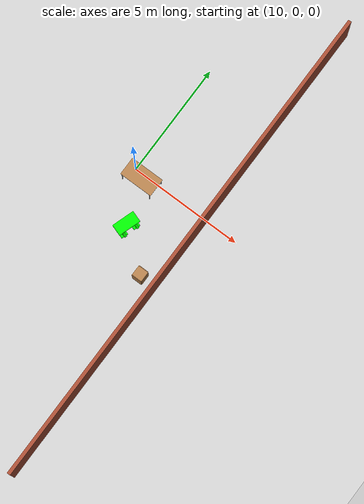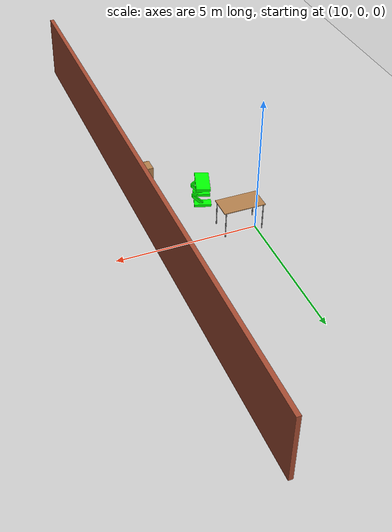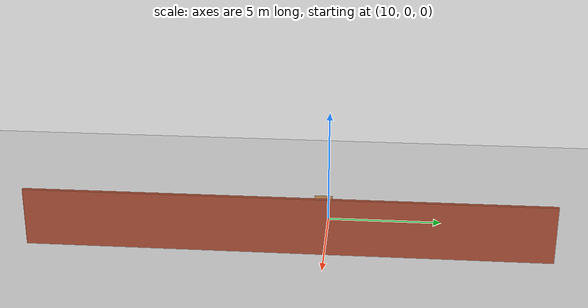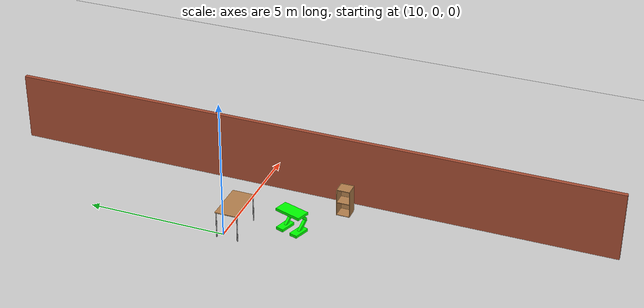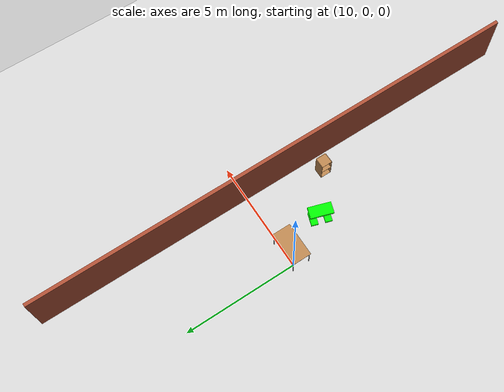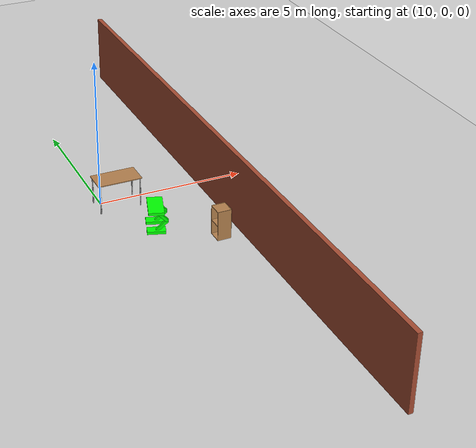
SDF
<sdf version="1.7">
 <world name="default">
  <model name="ground_plane">
   <static>1</static>
   <link name="link">
    <collision name="collision">
     <geometry><plane><normal>0 0 1</normal><size>100 100</size></plane></geometry>
     <surface>
      <contact><collide_bitmask>65535</collide_bitmask></contact>
      <friction><ode><mu>100</mu><mu2>50</mu2></ode></friction>
     </surface>
    </collision>
    <visual name="visual">
     <cast_shadows>0</cast_shadows>
     <geometry><plane><normal>0 0 1</normal><size>100 100</size></plane></geometry>
     <material>
      <script><uri>file://media/materials/scripts/gazebo.material</uri><name>Gazebo/Grey</name></script>
     </material>
    </visual>
   </link>
  </model>
  <model name="newworld">
   <link name="Wall_39">
    <pose>13.3204 -2.52468 0 0 -0 1.5708</pose>
    <visual name="Wall_39_Visual">
     <pose>0 0 1.25 0 -0 0</pose>
     <geometry><box><size>22.25 0.15 2.5</size></box></geometry>
     <material>
      <script><uri>file://media/materials/scripts/gazebo.material</uri><name>Gazebo/Bricks</name></script>
      <ambient>1 1 1 1</ambient>
      <shader type="pixel"/>
     </material>
     <meta><layer>0</layer></meta>
    </visual>
    <collision name="Wall_39_Collision">
     <pose>0 0 1.25 0 -0 0</pose>
     <geometry><box><size>22.25 0.15 2.5</size></box></geometry>
     <surface>
      <friction>
       <ode><mu>1</mu><mu2>1</mu2><fdir1>0 0 0</fdir1><slip1>0</slip1><slip2>0</slip2></ode>
       <torsional>
        <coefficient>1</coefficient>
        <patch_radius>0</patch_radius>
        <surface_radius>0</surface_radius>
        <use_patch_radius>1</use_patch_radius>
        <ode><slip>0</slip></ode>
       </torsional>
      </friction>
      <bounce><restitution_coefficient>0</restitution_coefficient><threshold>1e+06</threshold></bounce>
      <contact>
       <collide_without_contact>0</collide_without_contact>
       <collide_without_contact_bitmask>1</collide_without_contact_bitmask>
       <collide_bitmask>1</collide_bitmask>
       <ode>
        <soft_cfm>0</soft_cfm>
        <soft_erp>0.2</soft_erp>
        <kp>1e+13</kp>
        <kd>1</kd>
        <max_vel>0.01</max_vel>
        <min_depth>0</min_depth>
       </ode>
       <bullet>
        <split_impulse>1</split_impulse>
        <split_impulse_penetration_threshold>-0.01</split_impulse_penetration_threshold>
        <soft_cfm>0</soft_cfm>
        <soft_erp>0.2</soft_erp>
        <kp>1e+13</kp>
        <kd>1</kd>
       </bullet>
      </contact>
     </surface>
    </collision>
   </link>
   <static>1</static>
   <pose>0.193711 0.903984 0 0 -0 0</pose>
  </model>
  <model name="table_1">
   <static>1</static>
   <link name="link">
    <collision name="surface">
     <pose>0 0 1 0 -0 0</pose>
     <geometry><box><size>1.5 0.8 0.03</size></box></geometry>
     <surface><friction><ode><mu>0.6</mu><mu2>0.6</mu2></ode></friction></surface>
    </collision>
    <visual name="visual1">
     <pose>0 0 1 0 -0 0</pose>
     <geometry><box><size>1.5 0.8 0.03</size></box></geometry>
     <material>
      <script><uri>file://media/materials/scripts/gazebo.material</uri><name>Gazebo/Wood</name></script>
     </material>
    </visual>
    <collision name="front_left_leg">
     <pose>0.68 0.38 0.5 0 -0 0</pose>
     <geometry><cylinder><radius>0.02</radius><length>1</length></cylinder></geometry>
    </collision>
    <visual name="front_left_leg">
     <pose>0.68 0.38 0.5 0 -0 0</pose>
     <geometry><cylinder><radius>0.02</radius><length>1</length></cylinder></geometry>
     <material>
      <script><uri>file://media/materials/scripts/gazebo.material</uri><name>Gazebo/Grey</name></script>
     </material>
    </visual>
    <collision name="front_right_leg">
     <pose>0.68 -0.38 0.5 0 -0 0</pose>
     <geometry><cylinder><radius>0.02</radius><length>1</length></cylinder></geometry>
    </collision>
    <visual name="front_right_leg">
     <pose>0.68 -0.38 0.5 0 -0 0</pose>
     <geometry><cylinder><radius>0.02</radius><length>1</length></cylinder></geometry>
     <material>
      <script><uri>file://media/materials/scripts/gazebo.material</uri><name>Gazebo/Grey</name></script>
     </material>
    </visual>
    <collision name="back_right_leg">
     <pose>-0.68 -0.38 0.5 0 -0 0</pose>
     <geometry><cylinder><radius>0.02</radius><length>1</length></cylinder></geometry>
    </collision>
    <visual name="back_right_leg">
     <pose>-0.68 -0.38 0.5 0 -0 0</pose>
     <geometry><cylinder><radius>0.02</radius><length>1</length></cylinder></geometry>
     <material>
      <script><uri>file://media/materials/scripts/gazebo.material</uri><name>Gazebo/Grey</name></script>
     </material>
    </visual>
    <collision name="back_left_leg">
     <pose>-0.68 0.38 0.5 0 -0 0</pose>
     <geometry><cylinder><radius>0.02</radius><length>1</length></cylinder></geometry>
    </collision>
    <visual name="back_left_leg">
     <pose>-0.68 0.38 0.5 0 -0 0</pose>
     <geometry><cylinder><radius>0.02</radius><length>1</length></cylinder></geometry>
     <material>
      <script><uri>file://media/materials/scripts/gazebo.material</uri><name>Gazebo/Grey</name></script>
     </material>
    </visual>
   </link>
   <pose>10.4903 -0.235506 0 0 -0 0</pose>
  </model>
  <model name="cabinet">
   <static>1</static>
   <link name="cabinet_bottom_plate">
    <inertial>
     <pose>0 0 -1 0 -0 0</pose>
     <inertia><ixx>2.05</ixx><ixy>0</ixy><ixz>0</ixz><iyy>2.05</iyy><iyz>0</iyz><izz>2.05</izz></inertia>
     <mass>25</mass>
    </inertial>
    <collision name="cabinet_bottom_plate_geom">
     <pose>0 0 0.01 0 -0 0</pose>
     <geometry><box><size>0.45 0.45 0.02</size></box></geometry>
    </collision>
    <visual name="cabinet_bottom_plate_geom_visual">
     <pose>0 0 0.01 0 -0 0</pose>
     <geometry><box><size>0.45 0.45 0.02</size></box></geometry>
     <material>
      <script><uri>file://media/materials/scripts/gazebo.material</uri><name>Gazebo/Wood</name></script>
     </material>
    </visual>
    <collision name="cabinet_bottom_plate_geom_cabinet_back_plate">
     <pose>0.235 0 0.51 0 -0 0</pose>
     <geometry><box><size>0.02 0.45 1.02</size></box></geometry>
    </collision>
    <visual name="cabinet_bottom_plate_geom_cabinet_back_plate_visual">
     <pose>0.235 0 0.51 0 -0 0</pose>
     <geometry><box><size>0.02 0.45 1.02</size></box></geometry>
     <material>
      <script><uri>file://media/materials/scripts/gazebo.material</uri><name>Gazebo/Wood</name></script>
     </material>
    </visual>
    <collision name="cabinet_bottom_plate_geom_cabinet_left_plate">
     <pose>0 0.235 0.51 0 -0 0</pose>
     <geometry><box><size>0.45 0.02 1.02</size></box></geometry>
    </collision>
    <visual name="cabinet_bottom_plate_geom_cabinet_left_plate_visual">
     <pose>0 0.235 0.51 0 -0 0</pose>
     <geometry><box><size>0.45 0.02 1.02</size></box></geometry>
     <material>
      <script><uri>file://media/materials/scripts/gazebo.material</uri><name>Gazebo/Wood</name></script>
     </material>
    </visual>
    <collision name="cabinet_bottom_plate_geom_cabinet_middle_plate">
     <pose>0 0 0.51 0 -0 0</pose>
     <geometry><box><size>0.45 0.45 0.02</size></box></geometry>
    </collision>
    <visual name="cabinet_bottom_plate_geom_cabinet_middle_plate_visual">
     <pose>0 0 0.51 0 -0 0</pose>
     <geometry><box><size>0.45 0.45 0.02</size></box></geometry>
     <material>
      <script><uri>file://media/materials/scripts/gazebo.material</uri><name>Gazebo/Wood</name></script>
     </material>
    </visual>
    <collision name="cabinet_bottom_plate_geom_cabinet_right_plate">
     <pose>0 -0.235 0.51 0 -0 0</pose>
     <geometry><box><size>0.45 0.02 1.02</size></box></geometry>
    </collision>
    <visual name="cabinet_bottom_plate_geom_cabinet_right_plate_visual">
     <pose>0 -0.235 0.51 0 -0 0</pose>
     <geometry><box><size>0.45 0.02 1.02</size></box></geometry>
     <material>
      <script><uri>file://media/materials/scripts/gazebo.material</uri><name>Gazebo/Wood</name></script>
     </material>
    </visual>
    <collision name="cabinet_bottom_plate_geom_cabinet_top_plate">
     <pose>0 0 1.01 0 -0 0</pose>
     <geometry><box><size>0.45 0.45 0.02</size></box></geometry>
    </collision>
    <visual name="cabinet_bottom_plate_geom_cabinet_top_plate_visual">
     <pose>0 0 1.01 0 -0 0</pose>
     <geometry><box><size>0.45 0.45 0.02</size></box></geometry>
     <material>
      <script><uri>file://media/materials/scripts/gazebo.material</uri><name>Gazebo/Wood</name></script>
     </material>
    </visual>
   </link>
   <pose>12.7659 -3.37012 0 0 -0 0</pose>
  </model>
  <model name="HumanoidRobot_0">
   <model name="HumanoidRobot">
    <link name="link_0">
     <pose>-0.012657 0.075 0.964637 0 -0 0</pose>
     <inertial>
      <mass>1</mass>
      <inertia>
       <ixx>0.166667</ixx>
       <ixy>0</ixy>
       <ixz>0</ixz>
       <iyy>0.166667</iyy>
       <iyz>0</iyz>
       <izz>0.166667</izz>
      </inertia>
     </inertial>
     <visual name="visual">
      <geometry><box><size>0.5 1 0.1</size></box></geometry>
      <material>
       <lighting>1</lighting>
       <script><uri>file://media/materials/scripts/gazebo.material</uri><name>Gazebo/Grey</name></script>
       <shader type="pixel"><normal_map>__default__</normal_map></shader>
       <ambient>0 1 0 1</ambient>
       <diffuse>0.1 0.1 0.1 1</diffuse>
       <specular>0 0 0 1</specular>
       <emissive>0 0 0 1</emissive>
      </material>
     </visual>
     <collision name="collision">
      <geometry><box><size>0.5 1 0.1</size></box></geometry>
      <surface>
       <friction>
        <ode><mu>1</mu><mu2>1</mu2><fdir1>0 0 0</fdir1><slip1>0</slip1><slip2>0</slip2></ode>
        <torsional>
         <coefficient>1</coefficient>
         <patch_radius>0</patch_radius>
         <surface_radius>0</surface_radius>
         <use_patch_radius>1</use_patch_radius>
         <ode><slip>0</slip></ode>
        </torsional>
       </friction>
       <bounce><restitution_coefficient>0</restitution_coefficient><threshold>1e+06</threshold></bounce>
       <contact>
        <collide_without_contact>0</collide_without_contact>
        <collide_without_contact_bitmask>1</collide_without_contact_bitmask>
        <collide_bitmask>1</collide_bitmask>
        <ode>
         <soft_cfm>0</soft_cfm>
         <soft_erp>0.2</soft_erp>
         <kp>1e+13</kp>
         <kd>1</kd>
         <max_vel>0.01</max_vel>
         <min_depth>0</min_depth>
        </ode>
        <bullet>
         <split_impulse>1</split_impulse>
         <split_impulse_penetration_threshold>-0.01</split_impulse_penetration_threshold>
         <soft_cfm>0</soft_cfm>
         <soft_erp>0.2</soft_erp>
         <kp>1e+13</kp>
         <kd>1</kd>
        </bullet>
       </contact>
      </surface>
     </collision>
    </link>
    <link name="link_2">
     <pose>-0.012657 0.375 0.964637 0 -0.785 0</pose>
     <inertial>
      <mass>1</mass>
      <inertia>
       <ixx>0.166667</ixx>
       <ixy>0</ixy>
       <ixz>0</ixz>
       <iyy>0.166667</iyy>
       <iyz>0</iyz>
       <izz>0.166667</izz>
      </inertia>
     </inertial>
     <visual name="visual">
      <pose>0 0 -0.25 0 -0 0</pose>
      <geometry><box><size>0.1 0.1 0.5</size></box></geometry>
      <material>
       <lighting>1</lighting>
       <script><uri>file://media/materials/scripts/gazebo.material</uri><name>Gazebo/Grey</name></script>
       <shader type="pixel"><normal_map>__default__</normal_map></shader>
       <ambient>0 1 0 1</ambient>
       <diffuse>0.1 0.1 0.1 1</diffuse>
       <specular>0 0 0 1</specular>
       <emissive>0 0 0 1</emissive>
      </material>
     </visual>
     <collision name="collision">
      <pose>0 0 -0.25 0 -0 0</pose>
      <geometry><box><size>0.1 0.1 0.5</size></box></geometry>
      <surface>
       <friction>
        <ode><mu>1</mu><mu2>1</mu2><fdir1>0 0 0</fdir1><slip1>0</slip1><slip2>0</slip2></ode>
        <torsional>
         <coefficient>1</coefficient>
         <patch_radius>0</patch_radius>
         <surface_radius>0</surface_radius>
         <use_patch_radius>1</use_patch_radius>
         <ode><slip>0</slip></ode>
        </torsional>
       </friction>
       <bounce><restitution_coefficient>0</restitution_coefficient><threshold>1e+06</threshold></bounce>
       <contact>
        <collide_without_contact>0</collide_without_contact>
        <collide_without_contact_bitmask>1</collide_without_contact_bitmask>
        <collide_bitmask>1</collide_bitmask>
        <ode>
         <soft_cfm>0</soft_cfm>
         <soft_erp>0.2</soft_erp>
         <kp>1e+13</kp>
         <kd>1</kd>
         <max_vel>0.01</max_vel>
         <min_depth>0</min_depth>
        </ode>
        <bullet>
         <split_impulse>1</split_impulse>
         <split_impulse_penetration_threshold>-0.01</split_impulse_penetration_threshold>
         <soft_cfm>0</soft_cfm>
         <soft_erp>0.2</soft_erp>
         <kp>1e+13</kp>
         <kd>1</kd>
        </bullet>
       </contact>
      </surface>
     </collision>
    </link>
    <link name="link_2_clone">
     <pose>0.340755 0.375 0.610943 0 0.7857 0</pose>
     <inertial>
      <mass>1</mass>
      <inertia>
       <ixx>0.166667</ixx>
       <ixy>0</ixy>
       <ixz>0</ixz>
       <iyy>0.166667</iyy>
       <iyz>0</iyz>
       <izz>0.166667</izz>
      </inertia>
     </inertial>
     <visual name="visual">
      <pose>0 0 -0.25 0 -0 0</pose>
      <geometry><box><size>0.1 0.1 0.5</size></box></geometry>
      <material>
       <lighting>1</lighting>
       <script><uri>file://media/materials/scripts/gazebo.material</uri><name>Gazebo/Grey</name></script>
       <shader type="pixel"><normal_map>__default__</normal_map></shader>
       <ambient>0 1 0 1</ambient>
       <diffuse>0.1 0.1 0.1 1</diffuse>
       <specular>0 0 0 1</specular>
       <emissive>0 0 0 1</emissive>
      </material>
     </visual>
     <collision name="collision">
      <pose>0 0 -0.25 0 -0 0</pose>
      <geometry><box><size>0.1 0.1 0.5</size></box></geometry>
      <surface>
       <friction>
        <ode><mu>1</mu><mu2>1</mu2><fdir1>0 0 0</fdir1><slip1>0</slip1><slip2>0</slip2></ode>
        <torsional>
         <coefficient>1</coefficient>
         <patch_radius>0</patch_radius>
         <surface_radius>0</surface_radius>
         <use_patch_radius>1</use_patch_radius>
         <ode><slip>0</slip></ode>
        </torsional>
       </friction>
       <bounce><restitution_coefficient>0</restitution_coefficient><threshold>1e+06</threshold></bounce>
       <contact>
        <collide_without_contact>0</collide_without_contact>
        <collide_without_contact_bitmask>1</collide_without_contact_bitmask>
        <collide_bitmask>1</collide_bitmask>
        <ode>
         <soft_cfm>0</soft_cfm>
         <soft_erp>0.2</soft_erp>
         <kp>1e+13</kp>
         <kd>1</kd>
         <max_vel>0.01</max_vel>
         <min_depth>0</min_depth>
        </ode>
        <bullet>
         <split_impulse>1</split_impulse>
         <split_impulse_penetration_threshold>-0.01</split_impulse_penetration_threshold>
         <soft_cfm>0</soft_cfm>
         <soft_erp>0.2</soft_erp>
         <kp>1e+13</kp>
         <kd>1</kd>
        </bullet>
       </contact>
      </surface>
     </collision>
    </link>
    <link name="link_2_clone_clone">
     <pose>-0.012657 -0.225 0.964637 0 -0.7857 0</pose>
     <inertial>
      <mass>1</mass>
      <inertia>
       <ixx>0.166667</ixx>
       <ixy>0</ixy>
       <ixz>0</ixz>
       <iyy>0.166667</iyy>
       <iyz>0</iyz>
       <izz>0.166667</izz>
      </inertia>
     </inertial>
     <visual name="visual">
      <pose>0 0 -0.25 0 -0 0</pose>
      <geometry><box><size>0.1 0.1 0.5</size></box></geometry>
      <material>
       <lighting>1</lighting>
       <script><uri>file://media/materials/scripts/gazebo.material</uri><name>Gazebo/Grey</name></script>
       <shader type="pixel"><normal_map>__default__</normal_map></shader>
       <ambient>0 1 0 1</ambient>
       <diffuse>0.1 0.1 0.1 1</diffuse>
       <specular>0 0 0 1</specular>
       <emissive>0 0 0 1</emissive>
      </material>
     </visual>
     <collision name="collision">
      <pose>0 0 -0.25 0 -0 0</pose>
      <geometry><box><size>0.1 0.1 0.5</size></box></geometry>
      <surface>
       <friction>
        <ode><mu>1</mu><mu2>1</mu2><fdir1>0 0 0</fdir1><slip1>0</slip1><slip2>0</slip2></ode>
        <torsional>
         <coefficient>1</coefficient>
         <patch_radius>0</patch_radius>
         <surface_radius>0</surface_radius>
         <use_patch_radius>1</use_patch_radius>
         <ode><slip>0</slip></ode>
        </torsional>
       </friction>
       <bounce><restitution_coefficient>0</restitution_coefficient><threshold>1e+06</threshold></bounce>
       <contact>
        <collide_without_contact>0</collide_without_contact>
        <collide_without_contact_bitmask>1</collide_without_contact_bitmask>
        <collide_bitmask>1</collide_bitmask>
        <ode>
         <soft_cfm>0</soft_cfm>
         <soft_erp>0.2</soft_erp>
         <kp>1e+13</kp>
         <kd>1</kd>
         <max_vel>0.01</max_vel>
         <min_depth>0</min_depth>
        </ode>
        <bullet>
         <split_impulse>1</split_impulse>
         <split_impulse_penetration_threshold>-0.01</split_impulse_penetration_threshold>
         <soft_cfm>0</soft_cfm>
         <soft_erp>0.2</soft_erp>
         <kp>1e+13</kp>
         <kd>1</kd>
        </bullet>
       </contact>
      </surface>
     </collision>
    </link>
    <link name="link_2_clone_clone_clone">
     <pose>0.341003 -0.225 0.611191 0 0.785 0</pose>
     <inertial>
      <mass>1</mass>
      <inertia>
       <ixx>0.166667</ixx>
       <ixy>0</ixy>
       <ixz>0</ixz>
       <iyy>0.166667</iyy>
       <iyz>0</iyz>
       <izz>0.166667</izz>
      </inertia>
     </inertial>
     <visual name="visual">
      <pose>0 0 -0.25 0 -0 0</pose>
      <geometry><box><size>0.1 0.1 0.5</size></box></geometry>
      <material>
       <lighting>1</lighting>
       <script><uri>file://media/materials/scripts/gazebo.material</uri><name>Gazebo/Grey</name></script>
       <shader type="pixel"><normal_map>__default__</normal_map></shader>
       <ambient>0 1 0 1</ambient>
       <diffuse>0.1 0.1 0.1 1</diffuse>
       <specular>0 0 0 1</specular>
       <emissive>0 0 0 1</emissive>
      </material>
     </visual>
     <collision name="collision">
      <pose>0 0 -0.25 0 -0 0</pose>
      <geometry><box><size>0.1 0.1 0.5</size></box></geometry>
      <surface>
       <friction>
        <ode><mu>1</mu><mu2>1</mu2><fdir1>0 0 0</fdir1><slip1>0</slip1><slip2>0</slip2></ode>
        <torsional>
         <coefficient>1</coefficient>
         <patch_radius>0</patch_radius>
         <surface_radius>0</surface_radius>
         <use_patch_radius>1</use_patch_radius>
         <ode><slip>0</slip></ode>
        </torsional>
       </friction>
       <bounce><restitution_coefficient>0</restitution_coefficient><threshold>1e+06</threshold></bounce>
       <contact>
        <collide_without_contact>0</collide_without_contact>
        <collide_without_contact_bitmask>1</collide_without_contact_bitmask>
        <collide_bitmask>1</collide_bitmask>
        <ode>
         <soft_cfm>0</soft_cfm>
         <soft_erp>0.2</soft_erp>
         <kp>1e+13</kp>
         <kd>1</kd>
         <max_vel>0.01</max_vel>
         <min_depth>0</min_depth>
        </ode>
        <bullet>
         <split_impulse>1</split_impulse>
         <split_impulse_penetration_threshold>-0.01</split_impulse_penetration_threshold>
         <soft_cfm>0</soft_cfm>
         <soft_erp>0.2</soft_erp>
         <kp>1e+13</kp>
         <kd>1</kd>
        </bullet>
       </contact>
      </surface>
     </collision>
    </link>
    <link name="link_3">
     <pose>-0.01241 -0.225 0.257496 0 -0 0</pose>
     <inertial>
      <mass>1</mass>
      <inertia>
       <ixx>0.166667</ixx>
       <ixy>0</ixy>
       <ixz>0</ixz>
       <iyy>0.166667</iyy>
       <iyz>0</iyz>
       <izz>0.166667</izz>
      </inertia>
     </inertial>
     <visual name="visual">
      <geometry><box><size>0.6 0.3 0.1</size></box></geometry>
      <material>
       <lighting>1</lighting>
       <script><uri>file://media/materials/scripts/gazebo.material</uri><name>Gazebo/Grey</name></script>
       <shader type="pixel"><normal_map>__default__</normal_map></shader>
       <ambient>0 1 0 1</ambient>
       <diffuse>0.1 0.1 0.1 1</diffuse>
       <specular>0 0 0 1</specular>
       <emissive>0 0 0 1</emissive>
      </material>
     </visual>
     <collision name="collision">
      <geometry><box><size>0.6 0.3 0.1</size></box></geometry>
      <surface>
       <friction>
        <ode><mu>1</mu><mu2>1</mu2><fdir1>0 0 0</fdir1><slip1>0</slip1><slip2>0</slip2></ode>
        <torsional>
         <coefficient>1</coefficient>
         <patch_radius>0</patch_radius>
         <surface_radius>0</surface_radius>
         <use_patch_radius>1</use_patch_radius>
         <ode><slip>0</slip></ode>
        </torsional>
       </friction>
       <bounce><restitution_coefficient>0</restitution_coefficient><threshold>1e+06</threshold></bounce>
       <contact>
        <collide_without_contact>0</collide_without_contact>
        <collide_without_contact_bitmask>1</collide_without_contact_bitmask>
        <collide_bitmask>1</collide_bitmask>
        <ode>
         <soft_cfm>0</soft_cfm>
         <soft_erp>0.2</soft_erp>
         <kp>1e+13</kp>
         <kd>1</kd>
         <max_vel>0.01</max_vel>
         <min_depth>0</min_depth>
        </ode>
        <bullet>
         <split_impulse>1</split_impulse>
         <split_impulse_penetration_threshold>-0.01</split_impulse_penetration_threshold>
         <soft_cfm>0</soft_cfm>
         <soft_erp>0.2</soft_erp>
         <kp>1e+13</kp>
         <kd>1</kd>
        </bullet>
       </contact>
      </surface>
     </collision>
    </link>
    <link name="link_3_clone">
     <pose>-0.012905 0.375 0.257496 0 -0 0</pose>
     <inertial>
      <mass>1</mass>
      <inertia>
       <ixx>0.166667</ixx>
       <ixy>0</ixy>
       <ixz>0</ixz>
       <iyy>0.166667</iyy>
       <iyz>0</iyz>
       <izz>0.166667</izz>
      </inertia>
     </inertial>
     <visual name="visual">
      <geometry><box><size>0.6 0.3 0.1</size></box></geometry>
      <material>
       <lighting>1</lighting>
       <script><uri>file://media/materials/scripts/gazebo.material</uri><name>Gazebo/Grey</name></script>
       <shader type="pixel"><normal_map>__default__</normal_map></shader>
       <ambient>0 1 0 1</ambient>
       <diffuse>0.1 0.1 0.1 1</diffuse>
       <specular>0 0 0 1</specular>
       <emissive>0 0 0 1</emissive>
      </material>
     </visual>
     <collision name="collision">
      <geometry><box><size>0.6 0.3 0.1</size></box></geometry>
      <surface>
       <friction>
        <ode><mu>1</mu><mu2>1</mu2><fdir1>0 0 0</fdir1><slip1>0</slip1><slip2>0</slip2></ode>
        <torsional>
         <coefficient>1</coefficient>
         <patch_radius>0</patch_radius>
         <surface_radius>0</surface_radius>
         <use_patch_radius>1</use_patch_radius>
         <ode><slip>0</slip></ode>
        </torsional>
       </friction>
       <bounce><restitution_coefficient>0</restitution_coefficient><threshold>1e+06</threshold></bounce>
       <contact>
        <collide_without_contact>0</collide_without_contact>
        <collide_without_contact_bitmask>1</collide_without_contact_bitmask>
        <collide_bitmask>1</collide_bitmask>
        <ode>
         <soft_cfm>0</soft_cfm>
         <soft_erp>0.2</soft_erp>
         <kp>1e+13</kp>
         <kd>1</kd>
         <max_vel>0.01</max_vel>
         <min_depth>0</min_depth>
        </ode>
        <bullet>
         <split_impulse>1</split_impulse>
         <split_impulse_penetration_threshold>-0.01</split_impulse_penetration_threshold>
         <soft_cfm>0</soft_cfm>
         <soft_erp>0.2</soft_erp>
         <kp>1e+13</kp>
         <kd>1</kd>
        </bullet>
       </contact>
      </surface>
     </collision>
    </link>
    <joint name="link_0_JOINT_0" type="fixed">
     <parent>link_0</parent>
     <child>link_2</child>
     <axis>
      <xyz>0 1 0</xyz>
      <limit>
       <lower>-1.79769e+308</lower>
       <upper>1.79769e+308</upper>
       <effort>-1</effort>
       <velocity>-1</velocity>
      </limit>
      <dynamics>
       <spring_reference>0</spring_reference>
       <spring_stiffness>0</spring_stiffness>
       <damping>0</damping>
      </dynamics>
     </axis>
     <physics>
      <ode><limit><cfm>0</cfm><erp>0.2</erp></limit><suspension><cfm>0</cfm><erp>0.2</erp></suspension></ode>
     </physics>
    </joint>
    <joint name="link_0_JOINT_2" type="fixed">
     <parent>link_0</parent>
     <child>link_2_clone_clone</child>
     <axis>
      <xyz>0 1 0</xyz>
      <limit>
       <lower>-1.79769e+308</lower>
       <upper>1.79769e+308</upper>
       <effort>-1</effort>
       <velocity>-1</velocity>
      </limit>
      <dynamics>
       <spring_reference>0</spring_reference>
       <spring_stiffness>0</spring_stiffness>
       <damping>0</damping>
       <friction>0</friction>
      </dynamics>
     </axis>
     <physics>
      <ode><limit><cfm>0</cfm><erp>0.2</erp></limit><suspension><cfm>0</cfm><erp>0.2</erp></suspension></ode>
     </physics>
    </joint>
    <joint name="link_2_JOINT_1" type="fixed">
     <parent>link_2</parent>
     <child>link_2_clone</child>
     <axis>
      <xyz>0 1 0</xyz>
      <limit>
       <lower>-1.79769e+308</lower>
       <upper>1.79769e+308</upper>
       <effort>-1</effort>
       <velocity>-1</velocity>
      </limit>
      <dynamics>
       <spring_reference>0</spring_reference>
       <spring_stiffness>0</spring_stiffness>
       <damping>0</damping>
       <friction>0</friction>
      </dynamics>
     </axis>
     <physics>
      <ode><limit><cfm>0</cfm><erp>0.2</erp></limit><suspension><cfm>0</cfm><erp>0.2</erp></suspension></ode>
     </physics>
    </joint>
    <joint name="link_2_clone_JOINT_5" type="fixed">
     <parent>link_2_clone</parent>
     <child>link_3_clone</child>
     <axis>
      <xyz>0 1 0</xyz>
      <limit>
       <lower>-1.79769e+308</lower>
       <upper>1.79769e+308</upper>
       <effort>-1</effort>
       <velocity>-1</velocity>
      </limit>
      <dynamics>
       <spring_reference>0</spring_reference>
       <spring_stiffness>0</spring_stiffness>
       <damping>0</damping>
       <friction>0</friction>
      </dynamics>
     </axis>
     <physics>
      <ode><limit><cfm>0</cfm><erp>0.2</erp></limit><suspension><cfm>0</cfm><erp>0.2</erp></suspension></ode>
     </physics>
    </joint>
    <joint name="link_2_clone_clone_JOINT_3" type="fixed">
     <parent>link_2_clone_clone</parent>
     <child>link_2_clone_clone_clone</child>
     <axis>
      <xyz>0 1 0</xyz>
      <limit>
       <lower>-1.79769e+308</lower>
       <upper>1.79769e+308</upper>
       <effort>-1</effort>
       <velocity>-1</velocity>
      </limit>
      <dynamics>
       <spring_reference>0</spring_reference>
       <spring_stiffness>0</spring_stiffness>
       <damping>0</damping>
      </dynamics>
     </axis>
     <physics>
      <ode><limit><cfm>0</cfm><erp>0.2</erp></limit><suspension><cfm>0</cfm><erp>0.2</erp></suspension></ode>
     </physics>
    </joint>
    <joint name="link_2_clone_clone_clone_JOINT_4" type="fixed">
     <parent>link_2_clone_clone_clone</parent>
     <child>link_3</child>
     <axis>
      <xyz>0 1 0</xyz>
      <limit>
       <lower>-1.79769e+308</lower>
       <upper>1.79769e+308</upper>
       <effort>-1</effort>
       <velocity>-1</velocity>
      </limit>
      <dynamics>
       <spring_reference>0</spring_reference>
       <spring_stiffness>0</spring_stiffness>
       <damping>0</damping>
      </dynamics>
     </axis>
     <physics>
      <ode><limit><cfm>0</cfm><erp>0.2</erp></limit><suspension><cfm>0</cfm><erp>0.2</erp></suspension></ode>
     </physics>
    </joint>
    <static>0</static>
   </model>
   <static>1</static>
   <pose>11.0918 -2.13922 -0.207497 4e-06 1e-06 -0.321416</pose>
  </model>
 </world>
</sdf>
